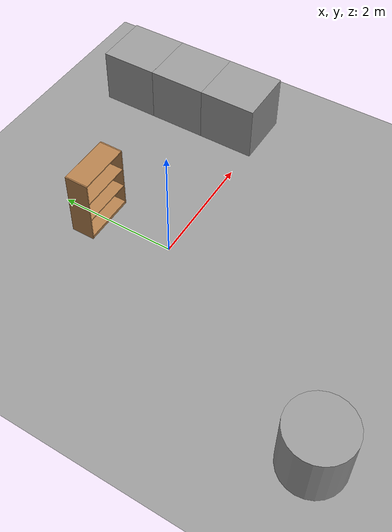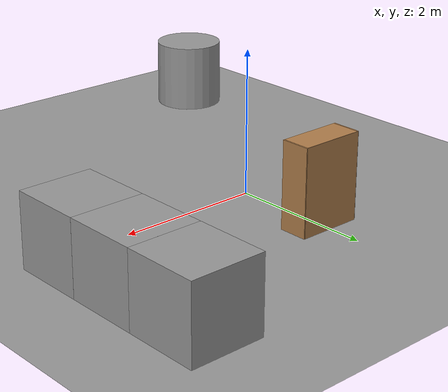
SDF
<sdf version="1.4">
 <world name="default">
  <light name="sun" type="directional">
   <pose>0 0 10 0 -0 0</pose>
   <diffuse>0.8 0.8 0.8 1</diffuse>
   <specular>0.2 0.2 0.2 1</specular>
   <attenuation>
    <range>1000</range>
    <constant>0.9</constant>
    <linear>0.01</linear>
    <quadratic>0.001</quadratic>
   </attenuation>
   <direction>0.5 0.1 -0.9</direction>
  </light>
  <scene><ambient>0.4 0.4 0.4 1</ambient><background>0.7 0.7 0.7 1</background><shadows>1</shadows></scene>
  <physics type="ode">
   <max_step_size>0.01</max_step_size>
   <real_time_factor>1</real_time_factor>
   <real_time_update_rate>100</real_time_update_rate>
   <gravity>0 0 -9.8</gravity>
  </physics>
  <model name="bookshelf">
   <static>1</static>
   <link name="link">
    <inertial><mass>1</mass></inertial>
    <collision name="back">
     <pose>0 0.005 0.6 0 -0 0</pose>
     <geometry><box><size>0.9 0.01 1.2</size></box></geometry>
    </collision>
    <visual name="visual1">
     <pose>0 0.005 0.6 0 -0 0</pose>
     <geometry><box><size>0.9 0.01 1.2</size></box></geometry>
     <material>
      <script><uri>file://media/materials/scripts/gazebo.material</uri><name>Gazebo/Wood</name></script>
     </material>
    </visual>
    <collision name="left_side">
     <pose>0.45 -0.195 0.6 0 -0 0</pose>
     <geometry><box><size>0.02 0.4 1.2</size></box></geometry>
    </collision>
    <visual name="visual2">
     <pose>0.45 -0.195 0.6 0 -0 0</pose>
     <geometry><box><size>0.02 0.4 1.2</size></box></geometry>
     <material>
      <script><uri>file://media/materials/scripts/gazebo.material</uri><name>Gazebo/Wood</name></script>
     </material>
    </visual>
    <collision name="right_side">
     <pose>-0.45 -0.195 0.6 0 -0 0</pose>
     <geometry><box><size>0.02 0.4 1.2</size></box></geometry>
    </collision>
    <visual name="visual3">
     <pose>-0.45 -0.195 0.6 0 -0 0</pose>
     <geometry><box><size>0.02 0.4 1.2</size></box></geometry>
     <material>
      <script><uri>file://media/materials/scripts/gazebo.material</uri><name>Gazebo/Wood</name></script>
     </material>
    </visual>
    <collision name="bottom">
     <pose>0 -0.195 0.03 0 -0 0</pose>
     <geometry><box><size>0.88 0.4 0.06</size></box></geometry>
    </collision>
    <visual name="visual4">
     <pose>0 -0.195 0.03 0 -0 0</pose>
     <geometry><box><size>0.88 0.4 0.06</size></box></geometry>
     <material>
      <script><uri>file://media/materials/scripts/gazebo.material</uri><name>Gazebo/Wood</name></script>
     </material>
    </visual>
    <collision name="top">
     <pose>0 -0.195 1.19 0 -0 0</pose>
     <geometry><box><size>0.88 0.4 0.02</size></box></geometry>
    </collision>
    <visual name="visual5">
     <pose>0 -0.195 1.19 0 -0 0</pose>
     <geometry><box><size>0.88 0.4 0.02</size></box></geometry>
     <material>
      <script><uri>file://media/materials/scripts/gazebo.material</uri><name>Gazebo/Wood</name></script>
     </material>
    </visual>
    <collision name="low_shelf">
     <pose>0 -0.195 0.43 0 -0 0</pose>
     <geometry><box><size>0.88 0.4 0.02</size></box></geometry>
    </collision>
    <visual name="visual6">
     <pose>0 -0.195 0.43 0 -0 0</pose>
     <geometry><box><size>0.88 0.4 0.02</size></box></geometry>
     <material>
      <script><uri>file://media/materials/scripts/gazebo.material</uri><name>Gazebo/Wood</name></script>
     </material>
    </visual>
    <collision name="high_shelf">
     <pose>0 -0.195 0.8 0 -0 0</pose>
     <geometry><box><size>0.88 0.4 0.02</size></box></geometry>
    </collision>
    <visual name="visual7">
     <pose>0 -0.195 0.8 0 -0 0</pose>
     <geometry><box><size>0.88 0.4 0.02</size></box></geometry>
     <material>
      <script><uri>file://media/materials/scripts/gazebo.material</uri><name>Gazebo/Wood</name></script>
     </material>
    </visual>
    <velocity_decay><linear>0</linear><angular>0</angular></velocity_decay>
   </link>
   <pose>0 1.53026 0 0 -0 0</pose>
  </model>
  <model name="ground_plane_0">
   <static>1</static>
   <link name="link">
    <collision name="collision">
     <geometry><plane><normal>0 0 1</normal><size>100 100</size></plane></geometry>
     <surface><friction><ode><mu>100</mu><mu2>50</mu2></ode></friction></surface>
    </collision>
    <visual name="visual">
     <cast_shadows>0</cast_shadows>
     <geometry><plane><normal>0 0 1</normal><size>100 100</size></plane></geometry>
     <material>
      <script><uri>file://media/materials/scripts/gazebo.material</uri><name>Gazebo/Grey</name></script>
     </material>
    </visual>
    <velocity_decay><linear>0</linear><angular>0</angular></velocity_decay>
   </link>
   <pose>0.497681 0 0 0 -0 0</pose>
  </model>
  <model name="unit_cylinder_1">
   <pose>-2 -3.4888 0.49912 -0 -0 -0</pose>
   <link name="link">
    <inertial>
     <mass>1</mass>
     <inertia><ixx>1</ixx><ixy>0</ixy><ixz>0</ixz><iyy>1</iyy><iyz>0</iyz><izz>1</izz></inertia>
    </inertial>
    <collision name="collision">
     <geometry><cylinder><radius>0.5</radius><length>1</length></cylinder></geometry>
    </collision>
    <visual name="visual">
     <geometry><cylinder><radius>0.5</radius><length>1</length></cylinder></geometry>
     <material>
      <script><uri>file://media/materials/scripts/gazebo.material</uri><name>Gazebo/Grey</name></script>
     </material>
    </visual>
    <velocity_decay><linear>0</linear><angular>0</angular></velocity_decay>
   </link>
   <static>0</static>
  </model>
  <model name="unit_box_3">
   <pose>2.99993 0.431498 0.5 0 -0 6e-06</pose>
   <link name="link">
    <inertial>
     <mass>1</mass>
     <inertia><ixx>1</ixx><ixy>0</ixy><ixz>0</ixz><iyy>1</iyy><iyz>0</iyz><izz>1</izz></inertia>
    </inertial>
    <collision name="collision"><geometry><box><size>1 1 1</size></box></geometry></collision>
    <visual name="visual">
     <geometry><box><size>1 1 1</size></box></geometry>
     <material>
      <script><uri>file://media/materials/scripts/gazebo.material</uri><name>Gazebo/Grey</name></script>
     </material>
    </visual>
    <velocity_decay><linear>0</linear><angular>0</angular></velocity_decay>
   </link>
   <static>0</static>
  </model>
  <model name="unit_box_4">
   <pose>2.99979 1.43155 0.5 0 -0 6e-06</pose>
   <link name="link">
    <inertial>
     <mass>1</mass>
     <inertia><ixx>1</ixx><ixy>0</ixy><ixz>0</ixz><iyy>1</iyy><iyz>0</iyz><izz>1</izz></inertia>
    </inertial>
    <collision name="collision"><geometry><box><size>1 1 1</size></box></geometry></collision>
    <visual name="visual">
     <geometry><box><size>1 1 1</size></box></geometry>
     <material>
      <script><uri>file://media/materials/scripts/gazebo.material</uri><name>Gazebo/Grey</name></script>
     </material>
    </visual>
    <velocity_decay><linear>0</linear><angular>0</angular></velocity_decay>
   </link>
   <static>0</static>
  </model>
  <model name="unit_box_5">
   <pose>2.99998 2.43156 0.5 0 -0 -6e-06</pose>
   <link name="link">
    <inertial>
     <mass>1</mass>
     <inertia><ixx>1</ixx><ixy>0</ixy><ixz>0</ixz><iyy>1</iyy><iyz>0</iyz><izz>1</izz></inertia>
    </inertial>
    <collision name="collision"><geometry><box><size>1 1 1</size></box></geometry></collision>
    <visual name="visual">
     <geometry><box><size>1 1 1</size></box></geometry>
     <material>
      <script><uri>file://media/materials/scripts/gazebo.material</uri><name>Gazebo/Grey</name></script>
     </material>
    </visual>
    <velocity_decay><linear>0</linear><angular>0</angular></velocity_decay>
   </link>
   <static>0</static>
  </model>
 </world>
</sdf>
